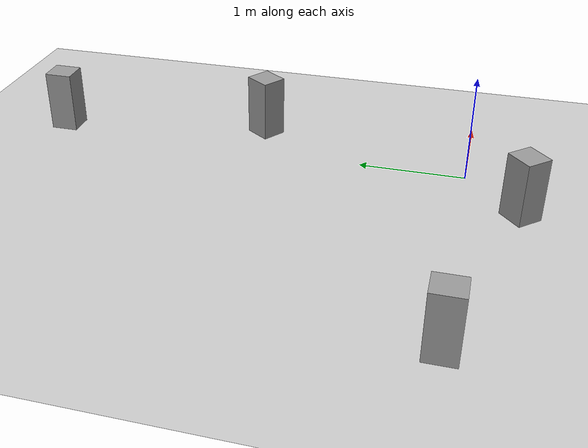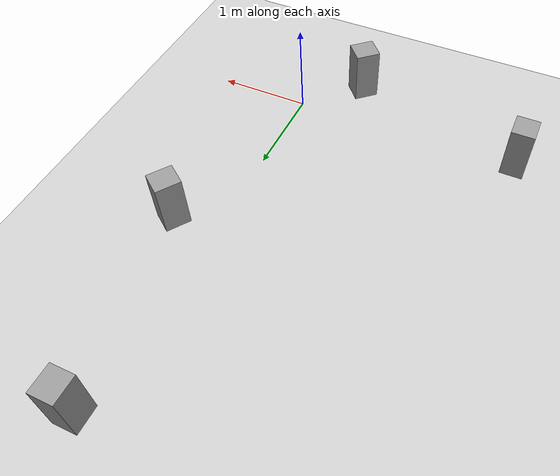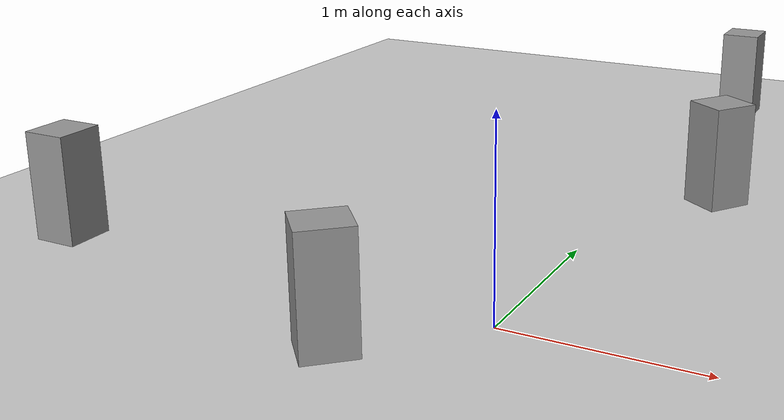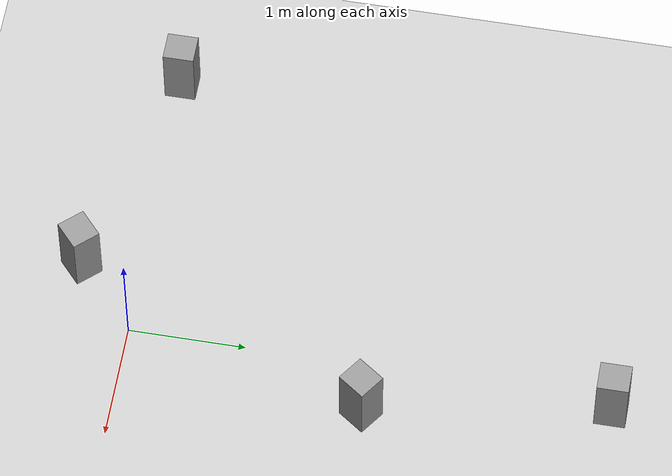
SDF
<sdf version="1.7">
 <world name="default">
  <light name="sun" type="directional">
   <pose>0 0 10 0 -0 0</pose>
   <diffuse>0.8 0.8 0.8 1</diffuse>
   <specular>0.2 0.2 0.2 1</specular>
   <attenuation>
    <range>1000</range>
    <constant>0.9</constant>
    <linear>0.01</linear>
    <quadratic>0.001</quadratic>
   </attenuation>
   <direction>-0.5 0.1 -0.9</direction>
   <spot><inner_angle>0</inner_angle><outer_angle>0</outer_angle><falloff>0</falloff></spot>
  </light>
  <model name="ground_plane">
   <static>1</static>
   <link name="link">
    <collision name="collision">
     <geometry><plane><normal>0 0 1</normal><size>100 100</size></plane></geometry>
     <surface><friction><ode><mu>100</mu><mu2>50</mu2></ode></friction></surface>
    </collision>
    <visual name="visual">
     <cast_shadows>0</cast_shadows>
     <geometry><plane><normal>0 0 1</normal><size>100 100</size></plane></geometry>
     <material>
      <script><uri>file://media/materials/scripts/gazebo.material</uri><name>Gazebo/Grey</name></script>
     </material>
    </visual>
   </link>
  </model>
  <physics type="ode">
   <real_time_update_rate>1000</real_time_update_rate>
   <max_step_size>0.001</max_step_size>
   <real_time_factor>1</real_time_factor>
   <ode>
    <solver>
     <type>quick</type>
     <iters>150</iters>
     <precon_iters>0</precon_iters>
     <sor>1.4</sor>
     <use_dynamic_moi_rescaling>1</use_dynamic_moi_rescaling>
    </solver>
    <constraints>
     <cfm>1e-05</cfm>
     <erp>0.2</erp>
     <contact_max_correcting_vel>2000</contact_max_correcting_vel>
     <contact_surface_layer>0.01</contact_surface_layer>
    </constraints>
   </ode>
  </physics>
  <scene><ambient>0.4 0.4 0.4 1</ambient><background>0.7 0.7 0.7 1</background><shadows>1</shadows></scene>
  <gravity>0 0 -9.8</gravity>
  <magnetic_field>6e-06 2.3e-05 -4.2e-05</magnetic_field>
  <atmosphere type="adiabatic"/>
  <audio><device>default</device></audio>
  <spherical_coordinates>
   <surface_model>EARTH_WGS84</surface_model>
   <latitude_deg>0</latitude_deg>
   <longitude_deg>0</longitude_deg>
   <elevation>0</elevation>
   <heading_deg>0</heading_deg>
  </spherical_coordinates>
  <model name="unit_box">
   <pose>0.097474 4.09087 0.297628 0 -3e-06 0</pose>
   <link name="link">
    <inertial>
     <mass>1</mass>
     <inertia>
      <ixx>0.166667</ixx>
      <ixy>0</ixy>
      <ixz>0</ixz>
      <iyy>0.166667</iyy>
      <iyz>0</iyz>
      <izz>0.166667</izz>
     </inertia>
    </inertial>
    <collision name="collision">
     <geometry><box><size>0.244845 0.263979 0.595257</size></box></geometry>
    </collision>
    <visual name="visual">
     <geometry><box><size>0.244845 0.263979 0.595257</size></box></geometry>
     <material>
      <script><name>Gazebo/Grey</name><uri>file://media/materials/scripts/gazebo.material</uri></script>
     </material>
    </visual>
   </link>
  </model>
  <model name="unit_box_clone">
   <pose>0.453475 2.0509 0.297628 0 3e-06 -0.616611</pose>
   <link name="link">
    <inertial>
     <mass>1</mass>
     <inertia>
      <ixx>0.166667</ixx>
      <ixy>0</ixy>
      <ixz>0</ixz>
      <iyy>0.166667</iyy>
      <iyz>0</iyz>
      <izz>0.166667</izz>
     </inertia>
    </inertial>
    <collision name="collision">
     <geometry><box><size>0.244845 0.263979 0.595257</size></box></geometry>
    </collision>
    <visual name="visual">
     <geometry><box><size>0.244845 0.263979 0.595257</size></box></geometry>
     <material>
      <script><name>Gazebo/Grey</name><uri>file://media/materials/scripts/gazebo.material</uri></script>
     </material>
    </visual>
   </link>
  </model>
  <model name="unit_box_clone_0">
   <pose>-0.549869 -0.507895 0.297628 3e-06 -0 -0.836147</pose>
   <link name="link">
    <inertial>
     <mass>1</mass>
     <inertia>
      <ixx>0.166667</ixx>
      <ixy>0</ixy>
      <ixz>0</ixz>
      <iyy>0.166667</iyy>
      <iyz>0</iyz>
      <izz>0.166667</izz>
     </inertia>
    </inertial>
    <collision name="collision">
     <geometry><box><size>0.244845 0.263979 0.595257</size></box></geometry>
    </collision>
    <visual name="visual">
     <geometry><box><size>0.244845 0.263979 0.595257</size></box></geometry>
     <material>
      <script><name>Gazebo/Grey</name><uri>file://media/materials/scripts/gazebo.material</uri></script>
     </material>
    </visual>
   </link>
  </model>
  <model name="unit_box_clone_1">
   <pose>-2.48652 -0.01255 0.297629 -2e-06 -0 -0</pose>
   <link name="link">
    <inertial>
     <mass>1</mass>
     <inertia>
      <ixx>0.166667</ixx>
      <ixy>0</ixy>
      <ixz>0</ixz>
      <iyy>0.166667</iyy>
      <iyz>0</iyz>
      <izz>0.166667</izz>
     </inertia>
    </inertial>
    <collision name="collision">
     <geometry><box><size>0.244845 0.263979 0.595257</size></box></geometry>
    </collision>
    <visual name="visual">
     <geometry><box><size>0.244845 0.263979 0.595257</size></box></geometry>
     <material>
      <script><name>Gazebo/Grey</name><uri>file://media/materials/scripts/gazebo.material</uri></script>
     </material>
    </visual>
   </link>
  </model>
 </world>
</sdf>
